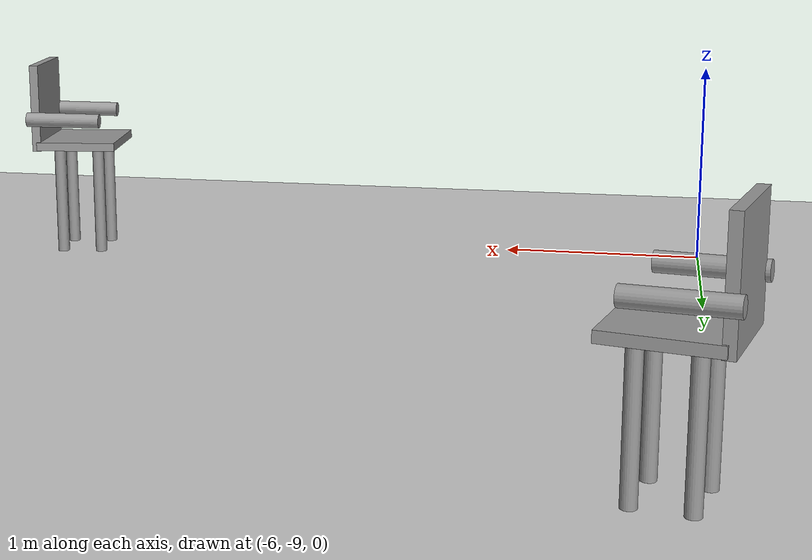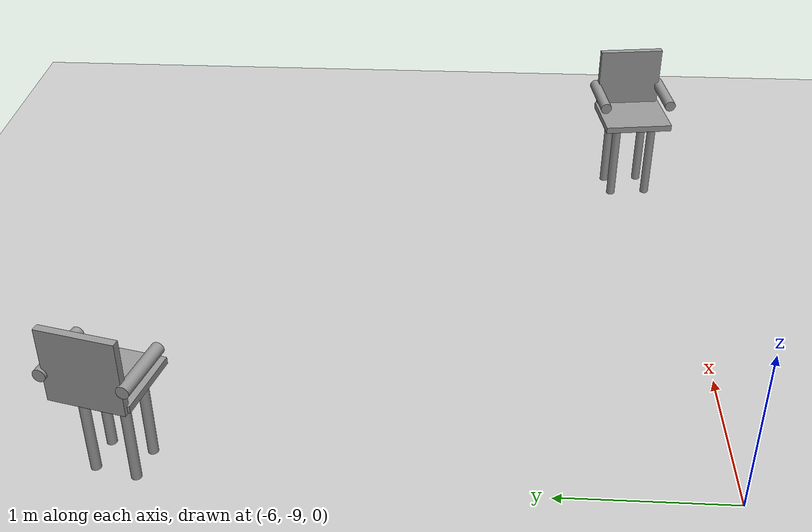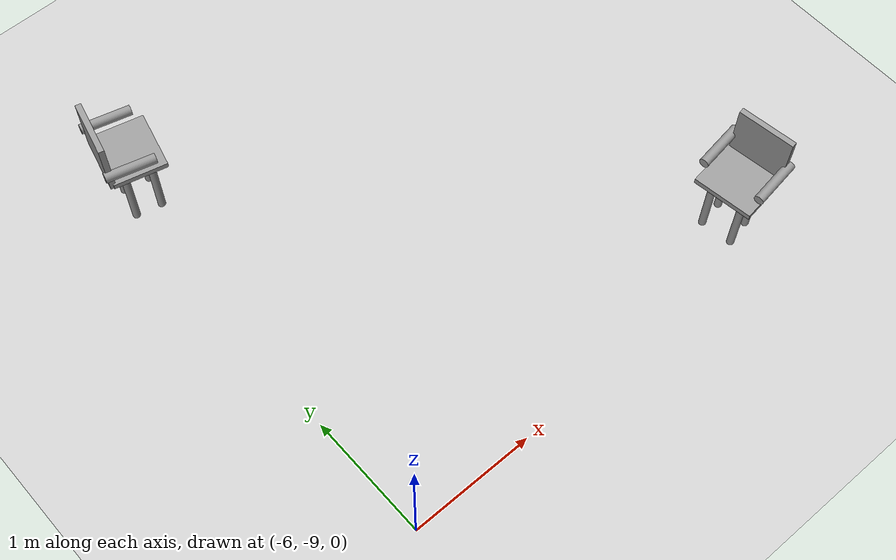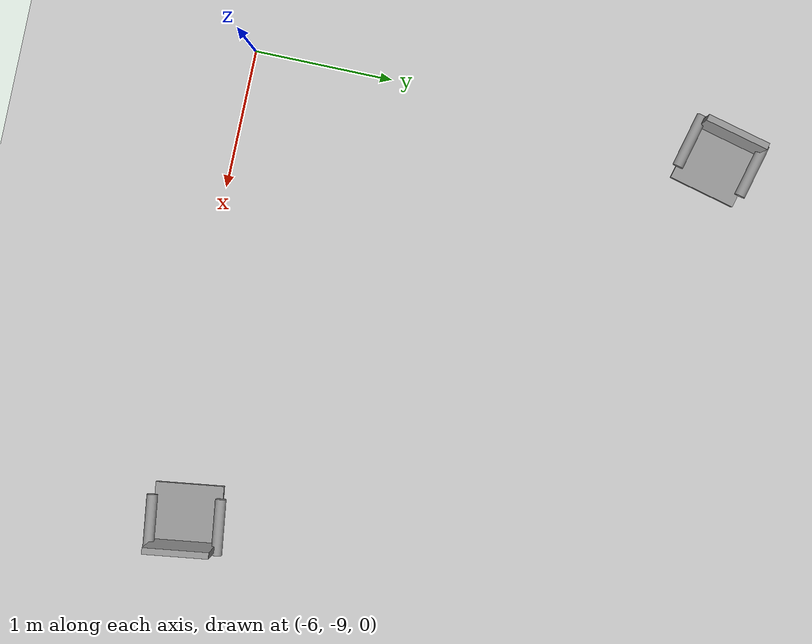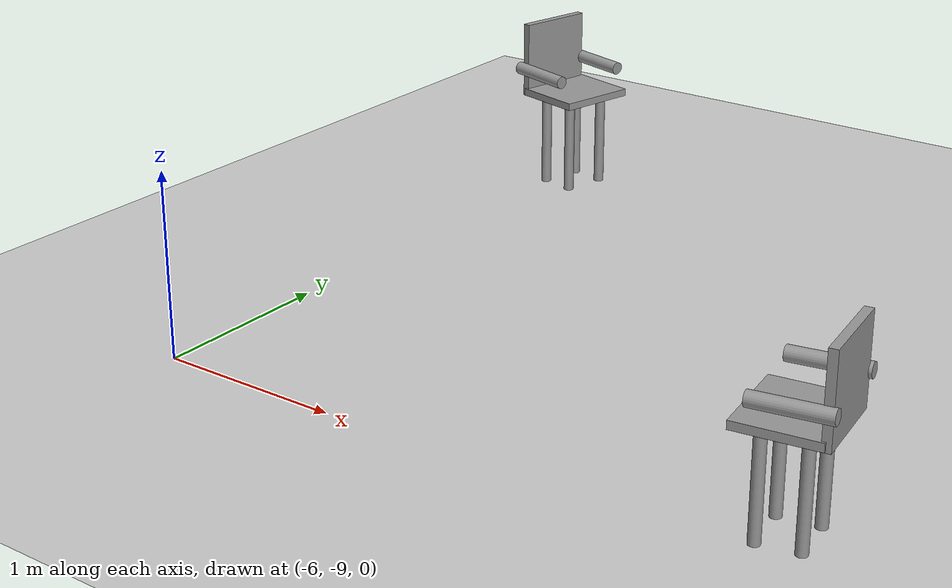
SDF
<sdf version="1.6">
 <world name="default">
  <model name="ground_plane">
   <static>1</static>
   <link name="link">
    <collision name="collision">
     <geometry><plane><normal>0 0 1</normal><size>100 100</size></plane></geometry>
     <surface>
      <contact><collide_bitmask>65535</collide_bitmask></contact>
      <friction><ode><mu>100</mu><mu2>50</mu2></ode></friction>
     </surface>
    </collision>
    <visual name="visual">
     <cast_shadows>0</cast_shadows>
     <geometry><plane><normal>0 0 1</normal><size>100 100</size></plane></geometry>
     <material>
      <script><uri>file://media/materials/scripts/gazebo.material</uri><name>Gazebo/Grey</name></script>
     </material>
    </visual>
   </link>
  </model>
  <model name="chair_clone_0_clone">
   <link name="link_4">
    <inertial>
     <mass>0.00194051</mass>
     <inertia>
      <ixx>5.14044e-05</ixx>
      <ixy>0</ixy>
      <ixz>0</ixz>
      <iyy>5.14044e-05</iyy>
      <iyz>0</iyz>
      <izz>8.34973e-07</izz>
     </inertia>
    </inertial>
    <pose>-0.140129 -0.127166 -0.209129 0 -0 0</pose>
    <visual name="visual">
     <geometry><cylinder><radius>0.0293355</radius><length>0.561516</length></cylinder></geometry>
     <material>
      <lighting>1</lighting>
      <script><uri>file://media/materials/scripts/gazebo.material</uri><name>Gazebo/Grey</name></script>
      <emissive>0 0 0 1</emissive>
     </material>
    </visual>
    <collision name="collision">
     <geometry><cylinder><radius>0.029336</radius><length>0.561516</length></cylinder></geometry>
     <surface>
      <friction>
       <ode><mu>1</mu><mu2>1</mu2><fdir1>0 0 0</fdir1><slip1>0</slip1><slip2>0</slip2></ode>
       <torsional>
        <coefficient>1</coefficient>
        <patch_radius>0</patch_radius>
        <surface_radius>0</surface_radius>
        <use_patch_radius>1</use_patch_radius>
        <ode><slip>0</slip></ode>
       </torsional>
      </friction>
      <bounce><restitution_coefficient>0</restitution_coefficient><threshold>1e+06</threshold></bounce>
      <contact>
       <collide_without_contact>0</collide_without_contact>
       <collide_without_contact_bitmask>1</collide_without_contact_bitmask>
       <collide_bitmask>1</collide_bitmask>
       <ode>
        <soft_cfm>0</soft_cfm>
        <soft_erp>0.2</soft_erp>
        <kp>1e+13</kp>
        <kd>1</kd>
        <max_vel>0.01</max_vel>
        <min_depth>0</min_depth>
       </ode>
       <bullet>
        <split_impulse>1</split_impulse>
        <split_impulse_penetration_threshold>-0.01</split_impulse_penetration_threshold>
        <soft_cfm>0</soft_cfm>
        <soft_erp>0.2</soft_erp>
        <kp>1e+13</kp>
        <kd>1</kd>
       </bullet>
      </contact>
     </surface>
    </collision>
   </link>
   <link name="link_4_clone">
    <inertial>
     <mass>0.00194051</mass>
     <inertia>
      <ixx>5.14044e-05</ixx>
      <ixy>0</ixy>
      <ixz>0</ixz>
      <iyy>5.14044e-05</iyy>
      <iyz>0</iyz>
      <izz>8.34973e-07</izz>
     </inertia>
    </inertial>
    <pose>-0.139565 0.126187 -0.209129 0 -0 0</pose>
    <visual name="visual">
     <geometry><cylinder><radius>0.0293355</radius><length>0.561516</length></cylinder></geometry>
     <material>
      <lighting>1</lighting>
      <script><uri>file://media/materials/scripts/gazebo.material</uri><name>Gazebo/Grey</name></script>
      <shader type="pixel"/>
      <emissive>0 0 0 1</emissive>
     </material>
    </visual>
    <collision name="collision">
     <geometry><cylinder><radius>0.029336</radius><length>0.561516</length></cylinder></geometry>
     <surface>
      <friction>
       <ode><mu>1</mu><mu2>1</mu2><fdir1>0 0 0</fdir1><slip1>0</slip1><slip2>0</slip2></ode>
       <torsional>
        <coefficient>1</coefficient>
        <patch_radius>0</patch_radius>
        <surface_radius>0</surface_radius>
        <use_patch_radius>1</use_patch_radius>
        <ode><slip>0</slip></ode>
       </torsional>
      </friction>
      <bounce><restitution_coefficient>0</restitution_coefficient><threshold>1e+06</threshold></bounce>
      <contact>
       <collide_without_contact>0</collide_without_contact>
       <collide_without_contact_bitmask>1</collide_without_contact_bitmask>
       <collide_bitmask>1</collide_bitmask>
       <ode>
        <soft_cfm>0</soft_cfm>
        <soft_erp>0.2</soft_erp>
        <kp>1e+13</kp>
        <kd>1</kd>
        <max_vel>0.01</max_vel>
        <min_depth>0</min_depth>
       </ode>
       <bullet>
        <split_impulse>1</split_impulse>
        <split_impulse_penetration_threshold>-0.01</split_impulse_penetration_threshold>
        <soft_cfm>0</soft_cfm>
        <soft_erp>0.2</soft_erp>
        <kp>1e+13</kp>
        <kd>1</kd>
       </bullet>
      </contact>
     </surface>
    </collision>
   </link>
   <link name="link_4_clone_0">
    <inertial>
     <mass>0.00194051</mass>
     <inertia>
      <ixx>5.14044e-05</ixx>
      <ixy>0</ixy>
      <ixz>0</ixz>
      <iyy>5.14044e-05</iyy>
      <iyz>0</iyz>
      <izz>8.34973e-07</izz>
     </inertia>
    </inertial>
    <pose>0.062929 0.13105 -0.209129 0 -0 0</pose>
    <visual name="visual">
     <geometry><cylinder><radius>0.0293355</radius><length>0.561516</length></cylinder></geometry>
     <material>
      <lighting>1</lighting>
      <script><uri>file://media/materials/scripts/gazebo.material</uri><name>Gazebo/Grey</name></script>
      <shader type="pixel"/>
      <emissive>0 0 0 1</emissive>
     </material>
    </visual>
    <collision name="collision">
     <geometry><cylinder><radius>0.029336</radius><length>0.561516</length></cylinder></geometry>
     <surface>
      <friction>
       <ode><mu>1</mu><mu2>1</mu2><fdir1>0 0 0</fdir1><slip1>0</slip1><slip2>0</slip2></ode>
       <torsional>
        <coefficient>1</coefficient>
        <patch_radius>0</patch_radius>
        <surface_radius>0</surface_radius>
        <use_patch_radius>1</use_patch_radius>
        <ode><slip>0</slip></ode>
       </torsional>
      </friction>
      <bounce><restitution_coefficient>0</restitution_coefficient><threshold>1e+06</threshold></bounce>
      <contact>
       <collide_without_contact>0</collide_without_contact>
       <collide_without_contact_bitmask>1</collide_without_contact_bitmask>
       <collide_bitmask>1</collide_bitmask>
       <ode>
        <soft_cfm>0</soft_cfm>
        <soft_erp>0.2</soft_erp>
        <kp>1e+13</kp>
        <kd>1</kd>
        <max_vel>0.01</max_vel>
        <min_depth>0</min_depth>
       </ode>
       <bullet>
        <split_impulse>1</split_impulse>
        <split_impulse_penetration_threshold>-0.01</split_impulse_penetration_threshold>
        <soft_cfm>0</soft_cfm>
        <soft_erp>0.2</soft_erp>
        <kp>1e+13</kp>
        <kd>1</kd>
       </bullet>
      </contact>
     </surface>
    </collision>
   </link>
   <link name="link_4_clone_1">
    <inertial>
     <mass>0.00194051</mass>
     <inertia>
      <ixx>5.14044e-05</ixx>
      <ixy>0</ixy>
      <ixz>0</ixz>
      <iyy>5.14044e-05</iyy>
      <iyz>0</iyz>
      <izz>8.34973e-07</izz>
     </inertia>
    </inertial>
    <pose>0.061641 -0.111934 -0.209129 0 -0 0</pose>
    <visual name="visual">
     <geometry><cylinder><radius>0.0293355</radius><length>0.561516</length></cylinder></geometry>
     <material>
      <lighting>1</lighting>
      <script><uri>file://media/materials/scripts/gazebo.material</uri><name>Gazebo/Grey</name></script>
      <shader type="pixel"/>
      <emissive>0 0 0 1</emissive>
     </material>
    </visual>
    <collision name="collision">
     <geometry><cylinder><radius>0.029336</radius><length>0.561516</length></cylinder></geometry>
     <surface>
      <friction>
       <ode><mu>1</mu><mu2>1</mu2><fdir1>0 0 0</fdir1><slip1>0</slip1><slip2>0</slip2></ode>
       <torsional>
        <coefficient>1</coefficient>
        <patch_radius>0</patch_radius>
        <surface_radius>0</surface_radius>
        <use_patch_radius>1</use_patch_radius>
        <ode><slip>0</slip></ode>
       </torsional>
      </friction>
      <bounce><restitution_coefficient>0</restitution_coefficient><threshold>1e+06</threshold></bounce>
      <contact>
       <collide_without_contact>0</collide_without_contact>
       <collide_without_contact_bitmask>1</collide_without_contact_bitmask>
       <collide_bitmask>1</collide_bitmask>
       <ode>
        <soft_cfm>0</soft_cfm>
        <soft_erp>0.2</soft_erp>
        <kp>1e+13</kp>
        <kd>1</kd>
        <max_vel>0.01</max_vel>
        <min_depth>0</min_depth>
       </ode>
       <bullet>
        <split_impulse>1</split_impulse>
        <split_impulse_penetration_threshold>-0.01</split_impulse_penetration_threshold>
        <soft_cfm>0</soft_cfm>
        <soft_erp>0.2</soft_erp>
        <kp>1e+13</kp>
        <kd>1</kd>
       </bullet>
      </contact>
     </surface>
    </collision>
   </link>
   <link name="link_5">
    <inertial>
     <mass>0.00816884</mass>
     <inertia>
      <ixx>0.00015002</ixx>
      <ixy>0</ixy>
      <ixz>0</ixz>
      <iyy>0.000115328</iyy>
      <iyz>0</iyz>
      <izz>0.000262862</izz>
     </inertia>
    </inertial>
    <pose>-0.041662 -0.005028 0.089077 0 -0 0</pose>
    <visual name="visual">
     <geometry><box><size>0.409378 0.467496 0.042729</size></box></geometry>
     <material>
      <lighting>1</lighting>
      <script><uri>file://media/materials/scripts/gazebo.material</uri><name>Gazebo/Grey</name></script>
      <emissive>0 0 0 1</emissive>
     </material>
    </visual>
    <collision name="collision">
     <geometry><box><size>0.409378 0.467496 0.042729</size></box></geometry>
     <surface>
      <friction>
       <ode><mu>1</mu><mu2>1</mu2><fdir1>0 0 0</fdir1><slip1>0</slip1><slip2>0</slip2></ode>
       <torsional>
        <coefficient>1</coefficient>
        <patch_radius>0</patch_radius>
        <surface_radius>0</surface_radius>
        <use_patch_radius>1</use_patch_radius>
        <ode><slip>0</slip></ode>
       </torsional>
      </friction>
      <bounce><restitution_coefficient>0</restitution_coefficient><threshold>1e+06</threshold></bounce>
      <contact>
       <collide_without_contact>0</collide_without_contact>
       <collide_without_contact_bitmask>1</collide_without_contact_bitmask>
       <collide_bitmask>1</collide_bitmask>
       <ode>
        <soft_cfm>0</soft_cfm>
        <soft_erp>0.2</soft_erp>
        <kp>1e+13</kp>
        <kd>1</kd>
        <max_vel>0.01</max_vel>
        <min_depth>0</min_depth>
       </ode>
       <bullet>
        <split_impulse>1</split_impulse>
        <split_impulse_penetration_threshold>-0.01</split_impulse_penetration_threshold>
        <soft_cfm>0</soft_cfm>
        <soft_erp>0.2</soft_erp>
        <kp>1e+13</kp>
        <kd>1</kd>
       </bullet>
      </contact>
     </surface>
    </collision>
   </link>
   <link name="link_6">
    <inertial>
     <mass>0.00855687</mass>
     <inertia>
      <ixx>0.000285159</ixx>
      <ixy>0</ixy>
      <ixz>0</ixz>
      <iyy>0.000146983</iyy>
      <iyz>0</iyz>
      <izz>0.000140925</izz>
     </inertia>
    </inertial>
    <pose>0.165697 -0.006458 0.287866 0 -0 0</pose>
    <visual name="visual">
     <geometry><box><size>0.0439 0.442383 0.451884</size></box></geometry>
     <material>
      <lighting>1</lighting>
      <script><uri>file://media/materials/scripts/gazebo.material</uri><name>Gazebo/Grey</name></script>
      <emissive>0 0 0 1</emissive>
     </material>
    </visual>
    <collision name="collision">
     <geometry><box><size>0.0439 0.442383 0.451884</size></box></geometry>
     <surface>
      <friction>
       <ode><mu>1</mu><mu2>1</mu2><fdir1>0 0 0</fdir1><slip1>0</slip1><slip2>0</slip2></ode>
       <torsional>
        <coefficient>1</coefficient>
        <patch_radius>0</patch_radius>
        <surface_radius>0</surface_radius>
        <use_patch_radius>1</use_patch_radius>
        <ode><slip>0</slip></ode>
       </torsional>
      </friction>
      <bounce><restitution_coefficient>0</restitution_coefficient><threshold>1e+06</threshold></bounce>
      <contact>
       <collide_without_contact>0</collide_without_contact>
       <collide_without_contact_bitmask>1</collide_without_contact_bitmask>
       <collide_bitmask>1</collide_bitmask>
       <ode>
        <soft_cfm>0</soft_cfm>
        <soft_erp>0.2</soft_erp>
        <kp>1e+13</kp>
        <kd>1</kd>
        <max_vel>0.01</max_vel>
        <min_depth>0</min_depth>
       </ode>
       <bullet>
        <split_impulse>1</split_impulse>
        <split_impulse_penetration_threshold>-0.01</split_impulse_penetration_threshold>
        <soft_cfm>0</soft_cfm>
        <soft_erp>0.2</soft_erp>
        <kp>1e+13</kp>
        <kd>1</kd>
       </bullet>
      </contact>
     </surface>
    </collision>
   </link>
   <link name="link_7">
    <inertial>
     <mass>0.00209129</mass>
     <inertia>
      <ixx>2.57536e-05</ixx>
      <ixy>0</ixy>
      <ixz>0</ixz>
      <iyy>2.57536e-05</iyy>
      <iyz>0</iyz>
      <izz>1.44551e-06</izz>
     </inertia>
    </inertial>
    <pose>0.0147 0.228665 0.230372 0 1.55081 0</pose>
    <visual name="visual">
     <geometry><cylinder><radius>0.0371808</radius><length>0.378984</length></cylinder></geometry>
     <material>
      <lighting>1</lighting>
      <script><uri>file://media/materials/scripts/gazebo.material</uri><name>Gazebo/Grey</name></script>
      <emissive>0 0 0 1</emissive>
     </material>
    </visual>
    <collision name="collision">
     <geometry><cylinder><radius>0.037181</radius><length>0.378984</length></cylinder></geometry>
     <surface>
      <friction>
       <ode><mu>1</mu><mu2>1</mu2><fdir1>0 0 0</fdir1><slip1>0</slip1><slip2>0</slip2></ode>
       <torsional>
        <coefficient>1</coefficient>
        <patch_radius>0</patch_radius>
        <surface_radius>0</surface_radius>
        <use_patch_radius>1</use_patch_radius>
        <ode><slip>0</slip></ode>
       </torsional>
      </friction>
      <bounce><restitution_coefficient>0</restitution_coefficient><threshold>1e+06</threshold></bounce>
      <contact>
       <collide_without_contact>0</collide_without_contact>
       <collide_without_contact_bitmask>1</collide_without_contact_bitmask>
       <collide_bitmask>1</collide_bitmask>
       <ode>
        <soft_cfm>0</soft_cfm>
        <soft_erp>0.2</soft_erp>
        <kp>1e+13</kp>
        <kd>1</kd>
        <max_vel>0.01</max_vel>
        <min_depth>0</min_depth>
       </ode>
       <bullet>
        <split_impulse>1</split_impulse>
        <split_impulse_penetration_threshold>-0.01</split_impulse_penetration_threshold>
        <soft_cfm>0</soft_cfm>
        <soft_erp>0.2</soft_erp>
        <kp>1e+13</kp>
        <kd>1</kd>
       </bullet>
      </contact>
     </surface>
    </collision>
   </link>
   <link name="link_7_clone">
    <inertial>
     <mass>0.00209129</mass>
     <inertia>
      <ixx>2.57536e-05</ixx>
      <ixy>0</ixy>
      <ixz>0</ixz>
      <iyy>2.57536e-05</iyy>
      <iyz>0</iyz>
      <izz>1.44551e-06</izz>
     </inertia>
    </inertial>
    <pose>0.01639 -0.235319 0.229201 0 1.55081 0</pose>
    <visual name="visual">
     <geometry><cylinder><radius>0.0371808</radius><length>0.378984</length></cylinder></geometry>
     <material>
      <lighting>1</lighting>
      <script><uri>file://media/materials/scripts/gazebo.material</uri><name>Gazebo/Grey</name></script>
      <shader type="pixel"/>
      <emissive>0 0 0 1</emissive>
     </material>
    </visual>
    <collision name="collision">
     <geometry><cylinder><radius>0.037181</radius><length>0.378984</length></cylinder></geometry>
     <surface>
      <friction>
       <ode><mu>1</mu><mu2>1</mu2><fdir1>0 0 0</fdir1><slip1>0</slip1><slip2>0</slip2></ode>
       <torsional>
        <coefficient>1</coefficient>
        <patch_radius>0</patch_radius>
        <surface_radius>0</surface_radius>
        <use_patch_radius>1</use_patch_radius>
        <ode><slip>0</slip></ode>
       </torsional>
      </friction>
      <bounce><restitution_coefficient>0</restitution_coefficient><threshold>1e+06</threshold></bounce>
      <contact>
       <collide_without_contact>0</collide_without_contact>
       <collide_without_contact_bitmask>1</collide_without_contact_bitmask>
       <collide_bitmask>1</collide_bitmask>
       <ode>
        <soft_cfm>0</soft_cfm>
        <soft_erp>0.2</soft_erp>
        <kp>1e+13</kp>
        <kd>1</kd>
        <max_vel>0.01</max_vel>
        <min_depth>0</min_depth>
       </ode>
       <bullet>
        <split_impulse>1</split_impulse>
        <split_impulse_penetration_threshold>-0.01</split_impulse_penetration_threshold>
        <soft_cfm>0</soft_cfm>
        <soft_erp>0.2</soft_erp>
        <kp>1e+13</kp>
        <kd>1</kd>
       </bullet>
      </contact>
     </surface>
    </collision>
   </link>
   <joint name="link_5_JOINT_2" type="fixed">
    <parent>link_5</parent>
    <child>link_4_clone_1</child>
    <physics>
     <ode><limit><cfm>0</cfm><erp>0.2</erp></limit><suspension><cfm>0</cfm><erp>0.2</erp></suspension></ode>
    </physics>
   </joint>
   <joint name="link_5_JOINT_3" type="fixed">
    <parent>link_5</parent>
    <child>link_4</child>
    <physics>
     <ode><limit><cfm>0</cfm><erp>0.2</erp></limit><suspension><cfm>0</cfm><erp>0.2</erp></suspension></ode>
    </physics>
   </joint>
   <joint name="link_5_JOINT_4" type="fixed">
    <parent>link_5</parent>
    <child>link_4_clone_0</child>
    <physics>
     <ode><limit><cfm>0</cfm><erp>0.2</erp></limit><suspension><cfm>0</cfm><erp>0.2</erp></suspension></ode>
    </physics>
   </joint>
   <joint name="link_5_JOINT_5" type="fixed">
    <parent>link_5</parent>
    <child>link_4_clone</child>
    <physics>
     <ode><limit><cfm>0</cfm><erp>0.2</erp></limit><suspension><cfm>0</cfm><erp>0.2</erp></suspension></ode>
    </physics>
   </joint>
   <joint name="link_5_JOINT_6" type="fixed">
    <parent>link_5</parent>
    <child>link_6</child>
    <physics>
     <ode><limit><cfm>0</cfm><erp>0.2</erp></limit><suspension><cfm>0</cfm><erp>0.2</erp></suspension></ode>
    </physics>
   </joint>
   <joint name="link_5_JOINT_7" type="fixed">
    <parent>link_5</parent>
    <child>link_7</child>
    <physics>
     <ode><limit><cfm>0</cfm><erp>0.2</erp></limit><suspension><cfm>0</cfm><erp>0.2</erp></suspension></ode>
    </physics>
   </joint>
   <joint name="link_5_JOINT_8" type="fixed">
    <parent>link_5</parent>
    <child>link_7_clone</child>
    <physics>
     <ode><limit><cfm>0</cfm><erp>0.2</erp></limit><suspension><cfm>0</cfm><erp>0.2</erp></suspension></ode>
    </physics>
   </joint>
   <static>0</static>
   <pose>-5.86574 -5.67504 0.489879 1e-06 3.1e-05 2.90222</pose>
  </model>
  <model name="chair_clone_3">
   <link name="link_4">
    <inertial>
     <mass>0.00194051</mass>
     <inertia>
      <ixx>5.14044e-05</ixx>
      <ixy>0</ixy>
      <ixz>0</ixz>
      <iyy>5.14044e-05</iyy>
      <iyz>0</iyz>
      <izz>8.34973e-07</izz>
     </inertia>
    </inertial>
    <pose>-0.140129 -0.127166 -0.209129 0 -0 0</pose>
    <visual name="visual">
     <geometry><cylinder><radius>0.0293355</radius><length>0.561516</length></cylinder></geometry>
     <material>
      <lighting>1</lighting>
      <script><uri>file://media/materials/scripts/gazebo.material</uri><name>Gazebo/Grey</name></script>
      <emissive>0 0 0 1</emissive>
     </material>
    </visual>
    <collision name="collision">
     <geometry><cylinder><radius>0.029336</radius><length>0.561516</length></cylinder></geometry>
     <surface>
      <friction>
       <ode><mu>1</mu><mu2>1</mu2><fdir1>0 0 0</fdir1><slip1>0</slip1><slip2>0</slip2></ode>
       <torsional>
        <coefficient>1</coefficient>
        <patch_radius>0</patch_radius>
        <surface_radius>0</surface_radius>
        <use_patch_radius>1</use_patch_radius>
        <ode><slip>0</slip></ode>
       </torsional>
      </friction>
      <bounce><restitution_coefficient>0</restitution_coefficient><threshold>1e+06</threshold></bounce>
      <contact>
       <collide_without_contact>0</collide_without_contact>
       <collide_without_contact_bitmask>1</collide_without_contact_bitmask>
       <collide_bitmask>1</collide_bitmask>
       <ode>
        <soft_cfm>0</soft_cfm>
        <soft_erp>0.2</soft_erp>
        <kp>1e+13</kp>
        <kd>1</kd>
        <max_vel>0.01</max_vel>
        <min_depth>0</min_depth>
       </ode>
       <bullet>
        <split_impulse>1</split_impulse>
        <split_impulse_penetration_threshold>-0.01</split_impulse_penetration_threshold>
        <soft_cfm>0</soft_cfm>
        <soft_erp>0.2</soft_erp>
        <kp>1e+13</kp>
        <kd>1</kd>
       </bullet>
      </contact>
     </surface>
    </collision>
   </link>
   <link name="link_4_clone">
    <inertial>
     <mass>0.00194051</mass>
     <inertia>
      <ixx>5.14044e-05</ixx>
      <ixy>0</ixy>
      <ixz>0</ixz>
      <iyy>5.14044e-05</iyy>
      <iyz>0</iyz>
      <izz>8.34973e-07</izz>
     </inertia>
    </inertial>
    <pose>-0.139565 0.126187 -0.209129 0 -0 0</pose>
    <visual name="visual">
     <geometry><cylinder><radius>0.0293355</radius><length>0.561516</length></cylinder></geometry>
     <material>
      <lighting>1</lighting>
      <script><uri>file://media/materials/scripts/gazebo.material</uri><name>Gazebo/Grey</name></script>
      <shader type="pixel"/>
      <emissive>0 0 0 1</emissive>
     </material>
    </visual>
    <collision name="collision">
     <geometry><cylinder><radius>0.029336</radius><length>0.561516</length></cylinder></geometry>
     <surface>
      <friction>
       <ode><mu>1</mu><mu2>1</mu2><fdir1>0 0 0</fdir1><slip1>0</slip1><slip2>0</slip2></ode>
       <torsional>
        <coefficient>1</coefficient>
        <patch_radius>0</patch_radius>
        <surface_radius>0</surface_radius>
        <use_patch_radius>1</use_patch_radius>
        <ode><slip>0</slip></ode>
       </torsional>
      </friction>
      <bounce><restitution_coefficient>0</restitution_coefficient><threshold>1e+06</threshold></bounce>
      <contact>
       <collide_without_contact>0</collide_without_contact>
       <collide_without_contact_bitmask>1</collide_without_contact_bitmask>
       <collide_bitmask>1</collide_bitmask>
       <ode>
        <soft_cfm>0</soft_cfm>
        <soft_erp>0.2</soft_erp>
        <kp>1e+13</kp>
        <kd>1</kd>
        <max_vel>0.01</max_vel>
        <min_depth>0</min_depth>
       </ode>
       <bullet>
        <split_impulse>1</split_impulse>
        <split_impulse_penetration_threshold>-0.01</split_impulse_penetration_threshold>
        <soft_cfm>0</soft_cfm>
        <soft_erp>0.2</soft_erp>
        <kp>1e+13</kp>
        <kd>1</kd>
       </bullet>
      </contact>
     </surface>
    </collision>
   </link>
   <link name="link_4_clone_0">
    <inertial>
     <mass>0.00194051</mass>
     <inertia>
      <ixx>5.14044e-05</ixx>
      <ixy>0</ixy>
      <ixz>0</ixz>
      <iyy>5.14044e-05</iyy>
      <iyz>0</iyz>
      <izz>8.34973e-07</izz>
     </inertia>
    </inertial>
    <pose>0.062929 0.13105 -0.209129 0 -0 0</pose>
    <visual name="visual">
     <geometry><cylinder><radius>0.0293355</radius><length>0.561516</length></cylinder></geometry>
     <material>
      <lighting>1</lighting>
      <script><uri>file://media/materials/scripts/gazebo.material</uri><name>Gazebo/Grey</name></script>
      <shader type="pixel"/>
      <emissive>0 0 0 1</emissive>
     </material>
    </visual>
    <collision name="collision">
     <geometry><cylinder><radius>0.029336</radius><length>0.561516</length></cylinder></geometry>
     <surface>
      <friction>
       <ode><mu>1</mu><mu2>1</mu2><fdir1>0 0 0</fdir1><slip1>0</slip1><slip2>0</slip2></ode>
       <torsional>
        <coefficient>1</coefficient>
        <patch_radius>0</patch_radius>
        <surface_radius>0</surface_radius>
        <use_patch_radius>1</use_patch_radius>
        <ode><slip>0</slip></ode>
       </torsional>
      </friction>
      <bounce><restitution_coefficient>0</restitution_coefficient><threshold>1e+06</threshold></bounce>
      <contact>
       <collide_without_contact>0</collide_without_contact>
       <collide_without_contact_bitmask>1</collide_without_contact_bitmask>
       <collide_bitmask>1</collide_bitmask>
       <ode>
        <soft_cfm>0</soft_cfm>
        <soft_erp>0.2</soft_erp>
        <kp>1e+13</kp>
        <kd>1</kd>
        <max_vel>0.01</max_vel>
        <min_depth>0</min_depth>
       </ode>
       <bullet>
        <split_impulse>1</split_impulse>
        <split_impulse_penetration_threshold>-0.01</split_impulse_penetration_threshold>
        <soft_cfm>0</soft_cfm>
        <soft_erp>0.2</soft_erp>
        <kp>1e+13</kp>
        <kd>1</kd>
       </bullet>
      </contact>
     </surface>
    </collision>
   </link>
   <link name="link_4_clone_1">
    <inertial>
     <mass>0.00194051</mass>
     <inertia>
      <ixx>5.14044e-05</ixx>
      <ixy>0</ixy>
      <ixz>0</ixz>
      <iyy>5.14044e-05</iyy>
      <iyz>0</iyz>
      <izz>8.34973e-07</izz>
     </inertia>
    </inertial>
    <pose>0.061641 -0.111934 -0.209129 0 -0 0</pose>
    <visual name="visual">
     <geometry><cylinder><radius>0.0293355</radius><length>0.561516</length></cylinder></geometry>
     <material>
      <lighting>1</lighting>
      <script><uri>file://media/materials/scripts/gazebo.material</uri><name>Gazebo/Grey</name></script>
      <shader type="pixel"/>
      <emissive>0 0 0 1</emissive>
     </material>
    </visual>
    <collision name="collision">
     <geometry><cylinder><radius>0.029336</radius><length>0.561516</length></cylinder></geometry>
     <surface>
      <friction>
       <ode><mu>1</mu><mu2>1</mu2><fdir1>0 0 0</fdir1><slip1>0</slip1><slip2>0</slip2></ode>
       <torsional>
        <coefficient>1</coefficient>
        <patch_radius>0</patch_radius>
        <surface_radius>0</surface_radius>
        <use_patch_radius>1</use_patch_radius>
        <ode><slip>0</slip></ode>
       </torsional>
      </friction>
      <bounce><restitution_coefficient>0</restitution_coefficient><threshold>1e+06</threshold></bounce>
      <contact>
       <collide_without_contact>0</collide_without_contact>
       <collide_without_contact_bitmask>1</collide_without_contact_bitmask>
       <collide_bitmask>1</collide_bitmask>
       <ode>
        <soft_cfm>0</soft_cfm>
        <soft_erp>0.2</soft_erp>
        <kp>1e+13</kp>
        <kd>1</kd>
        <max_vel>0.01</max_vel>
        <min_depth>0</min_depth>
       </ode>
       <bullet>
        <split_impulse>1</split_impulse>
        <split_impulse_penetration_threshold>-0.01</split_impulse_penetration_threshold>
        <soft_cfm>0</soft_cfm>
        <soft_erp>0.2</soft_erp>
        <kp>1e+13</kp>
        <kd>1</kd>
       </bullet>
      </contact>
     </surface>
    </collision>
   </link>
   <link name="link_5">
    <inertial>
     <mass>0.00816884</mass>
     <inertia>
      <ixx>0.00015002</ixx>
      <ixy>0</ixy>
      <ixz>0</ixz>
      <iyy>0.000115328</iyy>
      <iyz>0</iyz>
      <izz>0.000262862</izz>
     </inertia>
    </inertial>
    <pose>-0.041662 -0.005028 0.089077 0 -0 0</pose>
    <visual name="visual">
     <geometry><box><size>0.409378 0.467496 0.042729</size></box></geometry>
     <material>
      <lighting>1</lighting>
      <script><uri>file://media/materials/scripts/gazebo.material</uri><name>Gazebo/Grey</name></script>
      <emissive>0 0 0 1</emissive>
     </material>
    </visual>
    <collision name="collision">
     <geometry><box><size>0.409378 0.467496 0.042729</size></box></geometry>
     <surface>
      <friction>
       <ode><mu>1</mu><mu2>1</mu2><fdir1>0 0 0</fdir1><slip1>0</slip1><slip2>0</slip2></ode>
       <torsional>
        <coefficient>1</coefficient>
        <patch_radius>0</patch_radius>
        <surface_radius>0</surface_radius>
        <use_patch_radius>1</use_patch_radius>
        <ode><slip>0</slip></ode>
       </torsional>
      </friction>
      <bounce><restitution_coefficient>0</restitution_coefficient><threshold>1e+06</threshold></bounce>
      <contact>
       <collide_without_contact>0</collide_without_contact>
       <collide_without_contact_bitmask>1</collide_without_contact_bitmask>
       <collide_bitmask>1</collide_bitmask>
       <ode>
        <soft_cfm>0</soft_cfm>
        <soft_erp>0.2</soft_erp>
        <kp>1e+13</kp>
        <kd>1</kd>
        <max_vel>0.01</max_vel>
        <min_depth>0</min_depth>
       </ode>
       <bullet>
        <split_impulse>1</split_impulse>
        <split_impulse_penetration_threshold>-0.01</split_impulse_penetration_threshold>
        <soft_cfm>0</soft_cfm>
        <soft_erp>0.2</soft_erp>
        <kp>1e+13</kp>
        <kd>1</kd>
       </bullet>
      </contact>
     </surface>
    </collision>
   </link>
   <link name="link_6">
    <inertial>
     <mass>0.00855687</mass>
     <inertia>
      <ixx>0.000285159</ixx>
      <ixy>0</ixy>
      <ixz>0</ixz>
      <iyy>0.000146983</iyy>
      <iyz>0</iyz>
      <izz>0.000140925</izz>
     </inertia>
    </inertial>
    <pose>0.165697 -0.006458 0.287866 0 -0 0</pose>
    <visual name="visual">
     <geometry><box><size>0.0439 0.442383 0.451884</size></box></geometry>
     <material>
      <lighting>1</lighting>
      <script><uri>file://media/materials/scripts/gazebo.material</uri><name>Gazebo/Grey</name></script>
      <emissive>0 0 0 1</emissive>
     </material>
    </visual>
    <collision name="collision">
     <geometry><box><size>0.0439 0.442383 0.451884</size></box></geometry>
     <surface>
      <friction>
       <ode><mu>1</mu><mu2>1</mu2><fdir1>0 0 0</fdir1><slip1>0</slip1><slip2>0</slip2></ode>
       <torsional>
        <coefficient>1</coefficient>
        <patch_radius>0</patch_radius>
        <surface_radius>0</surface_radius>
        <use_patch_radius>1</use_patch_radius>
        <ode><slip>0</slip></ode>
       </torsional>
      </friction>
      <bounce><restitution_coefficient>0</restitution_coefficient><threshold>1e+06</threshold></bounce>
      <contact>
       <collide_without_contact>0</collide_without_contact>
       <collide_without_contact_bitmask>1</collide_without_contact_bitmask>
       <collide_bitmask>1</collide_bitmask>
       <ode>
        <soft_cfm>0</soft_cfm>
        <soft_erp>0.2</soft_erp>
        <kp>1e+13</kp>
        <kd>1</kd>
        <max_vel>0.01</max_vel>
        <min_depth>0</min_depth>
       </ode>
       <bullet>
        <split_impulse>1</split_impulse>
        <split_impulse_penetration_threshold>-0.01</split_impulse_penetration_threshold>
        <soft_cfm>0</soft_cfm>
        <soft_erp>0.2</soft_erp>
        <kp>1e+13</kp>
        <kd>1</kd>
       </bullet>
      </contact>
     </surface>
    </collision>
   </link>
   <link name="link_7">
    <inertial>
     <mass>0.00209129</mass>
     <inertia>
      <ixx>2.57536e-05</ixx>
      <ixy>0</ixy>
      <ixz>0</ixz>
      <iyy>2.57536e-05</iyy>
      <iyz>0</iyz>
      <izz>1.44551e-06</izz>
     </inertia>
    </inertial>
    <pose>0.0147 0.228665 0.230372 0 1.55081 0</pose>
    <visual name="visual">
     <geometry><cylinder><radius>0.0371808</radius><length>0.378984</length></cylinder></geometry>
     <material>
      <lighting>1</lighting>
      <script><uri>file://media/materials/scripts/gazebo.material</uri><name>Gazebo/Grey</name></script>
      <emissive>0 0 0 1</emissive>
     </material>
    </visual>
    <collision name="collision">
     <geometry><cylinder><radius>0.037181</radius><length>0.378984</length></cylinder></geometry>
     <surface>
      <friction>
       <ode><mu>1</mu><mu2>1</mu2><fdir1>0 0 0</fdir1><slip1>0</slip1><slip2>0</slip2></ode>
       <torsional>
        <coefficient>1</coefficient>
        <patch_radius>0</patch_radius>
        <surface_radius>0</surface_radius>
        <use_patch_radius>1</use_patch_radius>
        <ode><slip>0</slip></ode>
       </torsional>
      </friction>
      <bounce><restitution_coefficient>0</restitution_coefficient><threshold>1e+06</threshold></bounce>
      <contact>
       <collide_without_contact>0</collide_without_contact>
       <collide_without_contact_bitmask>1</collide_without_contact_bitmask>
       <collide_bitmask>1</collide_bitmask>
       <ode>
        <soft_cfm>0</soft_cfm>
        <soft_erp>0.2</soft_erp>
        <kp>1e+13</kp>
        <kd>1</kd>
        <max_vel>0.01</max_vel>
        <min_depth>0</min_depth>
       </ode>
       <bullet>
        <split_impulse>1</split_impulse>
        <split_impulse_penetration_threshold>-0.01</split_impulse_penetration_threshold>
        <soft_cfm>0</soft_cfm>
        <soft_erp>0.2</soft_erp>
        <kp>1e+13</kp>
        <kd>1</kd>
       </bullet>
      </contact>
     </surface>
    </collision>
   </link>
   <link name="link_7_clone">
    <inertial>
     <mass>0.00209129</mass>
     <inertia>
      <ixx>2.57536e-05</ixx>
      <ixy>0</ixy>
      <ixz>0</ixz>
      <iyy>2.57536e-05</iyy>
      <iyz>0</iyz>
      <izz>1.44551e-06</izz>
     </inertia>
    </inertial>
    <pose>0.01639 -0.235319 0.229201 0 1.55081 0</pose>
    <visual name="visual">
     <geometry><cylinder><radius>0.0371808</radius><length>0.378984</length></cylinder></geometry>
     <material>
      <lighting>1</lighting>
      <script><uri>file://media/materials/scripts/gazebo.material</uri><name>Gazebo/Grey</name></script>
      <shader type="pixel"/>
      <emissive>0 0 0 1</emissive>
     </material>
    </visual>
    <collision name="collision">
     <geometry><cylinder><radius>0.037181</radius><length>0.378984</length></cylinder></geometry>
     <surface>
      <friction>
       <ode><mu>1</mu><mu2>1</mu2><fdir1>0 0 0</fdir1><slip1>0</slip1><slip2>0</slip2></ode>
       <torsional>
        <coefficient>1</coefficient>
        <patch_radius>0</patch_radius>
        <surface_radius>0</surface_radius>
        <use_patch_radius>1</use_patch_radius>
        <ode><slip>0</slip></ode>
       </torsional>
      </friction>
      <bounce><restitution_coefficient>0</restitution_coefficient><threshold>1e+06</threshold></bounce>
      <contact>
       <collide_without_contact>0</collide_without_contact>
       <collide_without_contact_bitmask>1</collide_without_contact_bitmask>
       <collide_bitmask>1</collide_bitmask>
       <ode>
        <soft_cfm>0</soft_cfm>
        <soft_erp>0.2</soft_erp>
        <kp>1e+13</kp>
        <kd>1</kd>
        <max_vel>0.01</max_vel>
        <min_depth>0</min_depth>
       </ode>
       <bullet>
        <split_impulse>1</split_impulse>
        <split_impulse_penetration_threshold>-0.01</split_impulse_penetration_threshold>
        <soft_cfm>0</soft_cfm>
        <soft_erp>0.2</soft_erp>
        <kp>1e+13</kp>
        <kd>1</kd>
       </bullet>
      </contact>
     </surface>
    </collision>
   </link>
   <joint name="link_5_JOINT_2" type="fixed">
    <parent>link_5</parent>
    <child>link_4_clone_1</child>
    <physics>
     <ode><limit><cfm>0</cfm><erp>0.2</erp></limit><suspension><cfm>0</cfm><erp>0.2</erp></suspension></ode>
    </physics>
   </joint>
   <joint name="link_5_JOINT_3" type="fixed">
    <parent>link_5</parent>
    <child>link_4</child>
    <physics>
     <ode><limit><cfm>0</cfm><erp>0.2</erp></limit><suspension><cfm>0</cfm><erp>0.2</erp></suspension></ode>
    </physics>
   </joint>
   <joint name="link_5_JOINT_4" type="fixed">
    <parent>link_5</parent>
    <child>link_4_clone_0</child>
    <physics>
     <ode><limit><cfm>0</cfm><erp>0.2</erp></limit><suspension><cfm>0</cfm><erp>0.2</erp></suspension></ode>
    </physics>
   </joint>
   <joint name="link_5_JOINT_5" type="fixed">
    <parent>link_5</parent>
    <child>link_4_clone</child>
    <physics>
     <ode><limit><cfm>0</cfm><erp>0.2</erp></limit><suspension><cfm>0</cfm><erp>0.2</erp></suspension></ode>
    </physics>
   </joint>
   <joint name="link_5_JOINT_6" type="fixed">
    <parent>link_5</parent>
    <child>link_6</child>
    <physics>
     <ode><limit><cfm>0</cfm><erp>0.2</erp></limit><suspension><cfm>0</cfm><erp>0.2</erp></suspension></ode>
    </physics>
   </joint>
   <joint name="link_5_JOINT_7" type="fixed">
    <parent>link_5</parent>
    <child>link_7</child>
    <physics>
     <ode><limit><cfm>0</cfm><erp>0.2</erp></limit><suspension><cfm>0</cfm><erp>0.2</erp></suspension></ode>
    </physics>
   </joint>
   <joint name="link_5_JOINT_8" type="fixed">
    <parent>link_5</parent>
    <child>link_7_clone</child>
    <physics>
     <ode><limit><cfm>0</cfm><erp>0.2</erp></limit><suspension><cfm>0</cfm><erp>0.2</erp></suspension></ode>
    </physics>
   </joint>
   <static>0</static>
   <pose>-2.69478 -8.68802 0.489878 -0 3.3e-05 0.135797</pose>
  </model>
 </world>
</sdf>
